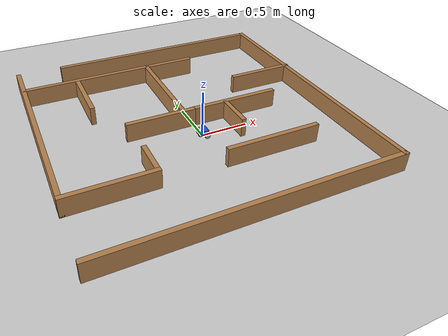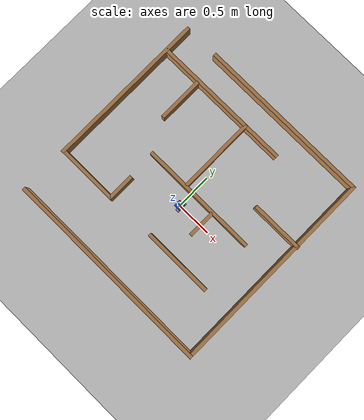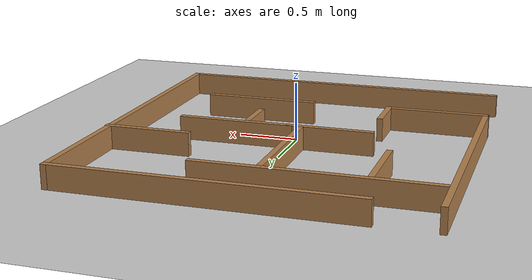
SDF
<sdf version="1.7">
 <world name="default">
  <light name="sun" type="directional">
   <pose>0 0 10 0 -0 0</pose>
   <diffuse>0.8 0.8 0.8 1</diffuse>
   <specular>0.2 0.2 0.2 1</specular>
   <attenuation>
    <range>1000</range>
    <constant>0.9</constant>
    <linear>0.01</linear>
    <quadratic>0.001</quadratic>
   </attenuation>
   <direction>-0.5 0.1 -0.9</direction>
   <spot><inner_angle>0</inner_angle><outer_angle>0</outer_angle><falloff>0</falloff></spot>
  </light>
  <model name="ground_plane">
   <static>1</static>
   <link name="link">
    <collision name="collision">
     <geometry><plane><normal>0 0 1</normal><size>100 100</size></plane></geometry>
     <surface><friction><ode><mu>100</mu><mu2>50</mu2></ode></friction></surface>
    </collision>
    <visual name="visual">
     <cast_shadows>0</cast_shadows>
     <geometry><plane><normal>0 0 1</normal><size>100 100</size></plane></geometry>
     <material>
      <script><uri>file://media/materials/scripts/gazebo.material</uri><name>Gazebo/Grey</name></script>
     </material>
    </visual>
   </link>
  </model>
  <gravity>0 0 -9.8</gravity>
  <magnetic_field>6e-06 2.3e-05 -4.2e-05</magnetic_field>
  <atmosphere type="adiabatic"/>
  <physics type="ode">
   <max_step_size>0.001</max_step_size>
   <real_time_factor>1</real_time_factor>
   <real_time_update_rate>1000</real_time_update_rate>
  </physics>
  <scene><ambient>0.4 0.4 0.4 1</ambient><background>0.7 0.7 0.7 1</background><shadows>1</shadows></scene>
  <audio><device>default</device></audio>
  <spherical_coordinates>
   <surface_model>EARTH_WGS84</surface_model>
   <latitude_deg>0</latitude_deg>
   <longitude_deg>0</longitude_deg>
   <elevation>0</elevation>
   <heading_deg>0</heading_deg>
  </spherical_coordinates>
  <model name="_robot">
   <link name="base_footprint">
    <inertial>
     <pose>0.004444 0 0.042767 0 -0 0</pose>
     <mass>7.5</mass>
     <inertia>
      <ixx>0.032018</ixx>
      <ixy>0</ixy>
      <ixz>0.000300556</ixz>
      <iyy>0.0394043</iyy>
      <iyz>-3.64333e-19</iyz>
      <izz>0.0323237</izz>
     </inertia>
    </inertial>
    <collision name="base_footprint_fixed_joint_lump__base_link_collision">
     <pose>0 0 0.052 0 -0 0</pose>
     <geometry><box><size>0.1 0.1 0.05</size></box></geometry>
    </collision>
    <collision name="base_footprint_fixed_joint_lump__LedLeft_frame_collision_1">
     <pose>0.05 0.03 0.057 3.14159 1.57079 3.14159</pose>
     <geometry><cylinder><length>0.005</length><radius>0.01</radius></cylinder></geometry>
    </collision>
    <collision name="base_footprint_fixed_joint_lump__LedRight_frame_collision_2">
     <pose>0.05 -0.03 0.057 3.14159 1.57079 3.14159</pose>
     <geometry><cylinder><length>0.005</length><radius>0.01</radius></cylinder></geometry>
    </collision>
    <collision name="base_footprint_fixed_joint_lump__caster_wheel_link_collision_3">
     <pose>-0.033333 0 0.0135 0 -0 0</pose>
     <geometry><sphere><radius>0.0135</radius></sphere></geometry>
     <surface><friction><ode><mu>0.1</mu><mu2>0.1</mu2></ode></friction></surface>
    </collision>
    <collision name="base_footprint_fixed_joint_lump__left_wheel_link_collision_4">
     <pose>0.025 -0.0625 0.027 1.5708 -0 0</pose>
     <geometry><cylinder><length>0.025</length><radius>0.027</radius></cylinder></geometry>
    </collision>
    <collision name="base_footprint_fixed_joint_lump__right_wheel_link_collision_5">
     <pose>0.025 0.0625 0.027 1.5708 -0 0</pose>
     <geometry><cylinder><length>0.025</length><radius>0.027</radius></cylinder></geometry>
    </collision>
    <collision name="base_footprint_fixed_joint_lump__ultrasonic_frame_collision_6">
     <pose>0.05 0 0.057 0 -0 0</pose>
     <geometry><cylinder><length>0.005</length><radius>0.01</radius></cylinder></geometry>
    </collision>
    <visual name="base_footprint_fixed_joint_lump__base_link_visual">
     <pose>0 0 0.052 0 -0 0</pose>
     <geometry><box><size>0.1 0.1 0.05</size></box></geometry>
     <material>
      <script><name>Gazebo/Blue</name><uri>file://media/materials/scripts/gazebo.material</uri></script>
     </material>
    </visual>
    <visual name="base_footprint_fixed_joint_lump__LedLeft_frame_visual_1">
     <pose>0.05 0.03 0.057 3.14159 1.57079 3.14159</pose>
     <geometry><cylinder><length>0.005</length><radius>0.01</radius></cylinder></geometry>
    </visual>
    <visual name="base_footprint_fixed_joint_lump__LedRight_frame_visual_2">
     <pose>0.05 -0.03 0.057 3.14159 1.57079 3.14159</pose>
     <geometry><cylinder><length>0.005</length><radius>0.01</radius></cylinder></geometry>
    </visual>
    <visual name="base_footprint_fixed_joint_lump__caster_wheel_link_visual_3">
     <pose>-0.033333 0 0.0135 0 -0 0</pose>
     <geometry><sphere><radius>0.0135</radius></sphere></geometry>
     <material>
      <script><name>Gazebo/Grey</name><uri>file://media/materials/scripts/gazebo.material</uri></script>
     </material>
    </visual>
    <visual name="base_footprint_fixed_joint_lump__left_wheel_link_visual_4">
     <pose>0.025 -0.0625 0.027 1.5708 -0 0</pose>
     <geometry><cylinder><length>0.025</length><radius>0.027</radius></cylinder></geometry>
     <material>
      <script><name>Gazebo/Grey</name><uri>file://media/materials/scripts/gazebo.material</uri></script>
     </material>
    </visual>
    <visual name="base_footprint_fixed_joint_lump__right_wheel_link_visual_5">
     <pose>0.025 0.0625 0.027 1.5708 -0 0</pose>
     <geometry><cylinder><length>0.025</length><radius>0.027</radius></cylinder></geometry>
     <material>
      <script><name>Gazebo/Grey</name><uri>file://media/materials/scripts/gazebo.material</uri></script>
     </material>
    </visual>
    <visual name="base_footprint_fixed_joint_lump__ultrasonic_frame_visual_6">
     <pose>0.05 0 0.057 0 -0 0</pose>
     <geometry><cylinder><length>0.005</length><radius>0.01</radius></cylinder></geometry>
     <material>
      <script><name>Gazebo/Blue</name><uri>file://media/materials/scripts/gazebo.material</uri></script>
     </material>
    </visual>
    <sensor name="laser" type="ray">
     <visualize>1</visualize>
     <update_rate>10</update_rate>
     <ray>
      <scan>
       <horizontal>
        <samples>360</samples>
        <min_angle>-0.01</min_angle>
        <max_angle>0.01</max_angle>
        <resolution>1</resolution>
       </horizontal>
       <vertical><samples>1</samples><min_angle>0</min_angle><max_angle>0</max_angle></vertical>
      </scan>
      <range><min>0.05</min><max>1</max></range>
     </ray>
     <plugin name="laser_controller" filename="libgazebo_ros_ray_sensor.so">
      <ros><argument>~/out:=scan</argument></ros>
      <output_type>sensor_msgs/LaserScan</output_type>
      <frame_name>ultrasonic_frame</frame_name>
     </plugin>
     <pose>0.05 0 0.057 0 -0 0</pose>
    </sensor>
   </link>
   <static>0</static>
   <plugin name="diff_drive_controller" filename="libgazebo_ros_diff_drive.so">
    <update_rate>50</update_rate>
    <left_joint>base_left_wheel_joint</left_joint>
    <right_joint>base_right_wheel_joint</right_joint>
    <wheel_separation>0.45</wheel_separation>
    <wheel_diameter>0.2</wheel_diameter>
    <publish_odom>1</publish_odom>
    <publish_odom_tf>1</publish_odom_tf>
    <publish_wheel_tf>1</publish_wheel_tf>
    <odometry_topic>odom</odometry_topic>
    <odometry_frame>odom</odometry_frame>
    <robot_base_frame>base_footprint</robot_base_frame>
   </plugin>
   <pose>-0.000196 4e-06 0 0 -1e-06 -0.000182</pose>
  </model>
  <model name="maze">
   <pose>-0.055215 0.23347 0 0 -0 0</pose>
   <link name="Wall_18">
    <collision name="Wall_18_Collision">
     <geometry><box><size>3 0.05 0.2</size></box></geometry>
     <pose>0 0 0.1 0 -0 0</pose>
    </collision>
    <visual name="Wall_18_Visual">
     <pose>0 0 0.1 0 -0 0</pose>
     <geometry><box><size>3 0.05 0.2</size></box></geometry>
     <material>
      <script><uri>file://media/materials/scripts/gazebo.material</uri><name>Gazebo/Wood</name></script>
      <ambient>1 1 1 1</ambient>
     </material>
     <meta><layer>0</layer></meta>
    </visual>
    <pose>-0.002 -1.475 0 0 -0 3.14159</pose>
   </link>
   <link name="Wall_20">
    <collision name="Wall_20_Collision">
     <geometry><box><size>3 0.05 0.2</size></box></geometry>
     <pose>0 0 0.1 0 -0 0</pose>
    </collision>
    <visual name="Wall_20_Visual">
     <pose>0 0 0.1 0 -0 0</pose>
     <geometry><box><size>3 0.05 0.2</size></box></geometry>
     <material>
      <script><uri>file://media/materials/scripts/gazebo.material</uri><name>Gazebo/Wood</name></script>
      <ambient>1 1 1 1</ambient>
     </material>
     <meta><layer>0</layer></meta>
    </visual>
    <pose>1.473 0 0 0 -0 1.5708</pose>
   </link>
   <link name="Wall_22">
    <collision name="Wall_22_Collision">
     <geometry><box><size>2.5 0.05 0.2</size></box></geometry>
     <pose>0 0 0.1 0 -0 0</pose>
    </collision>
    <visual name="Wall_22_Visual">
     <pose>0 0 0.1 0 -0 0</pose>
     <geometry><box><size>2.5 0.05 0.2</size></box></geometry>
     <material>
      <script><uri>file://media/materials/scripts/gazebo.material</uri><name>Gazebo/Wood</name></script>
      <ambient>1 1 1 1</ambient>
     </material>
     <meta><layer>0</layer></meta>
    </visual>
    <pose>0.248 1.475 0 0 -0 3.14159</pose>
   </link>
   <link name="Wall_26">
    <collision name="Wall_26_Collision">
     <geometry><box><size>1 0.05 0.2</size></box></geometry>
     <pose>0 0 0.1 0 -0 0</pose>
    </collision>
    <visual name="Wall_26_Visual">
     <pose>0 0 0.1 0 -0 0</pose>
     <geometry><box><size>1 0.05 0.2</size></box></geometry>
     <material>
      <script><uri>file://media/materials/scripts/gazebo.material</uri><name>Gazebo/Wood</name></script>
      <ambient>1 0.764706 0.305882 1</ambient>
     </material>
     <meta><layer>0</layer></meta>
    </visual>
    <pose>0.54649 -0.76451 0 0 -0 0</pose>
   </link>
   <link name="Wall_32">
    <collision name="Wall_32_Collision">
     <geometry><box><size>1 0.05 0.2</size></box></geometry>
     <pose>0 0 0.1 0 -0 0</pose>
    </collision>
    <visual name="Wall_32_Visual">
     <pose>0 0 0.1 0 -0 0</pose>
     <geometry><box><size>1 0.05 0.2</size></box></geometry>
     <material>
      <script><uri>file://media/materials/scripts/gazebo.material</uri><name>Gazebo/Wood</name></script>
      <ambient>1 0.764706 0.305882 1</ambient>
     </material>
     <meta><layer>0</layer></meta>
    </visual>
    <pose>0.519677 -0.008342 0 0 -0 0</pose>
   </link>
   <link name="Wall_40">
    <collision name="Wall_40_Collision">
     <geometry><box><size>2.3 0.05 0.2</size></box></geometry>
     <pose>0 0 0.1 0 -0 0</pose>
    </collision>
    <visual name="Wall_40_Visual">
     <pose>0 0 0.1 0 -0 0</pose>
     <geometry><box><size>2.3 0.05 0.2</size></box></geometry>
     <material>
      <script><uri>file://media/materials/scripts/gazebo.material</uri><name>Gazebo/Wood</name></script>
      <ambient>1 1 1 1</ambient>
     </material>
     <meta><layer>0</layer></meta>
    </visual>
    <pose>-1.484 0.342 0 0 -0 1.5708</pose>
   </link>
   <link name="Wall_42">
    <collision name="Wall_42_Collision">
     <geometry><box><size>0.9 0.05 0.2</size></box></geometry>
     <pose>0 0 0.1 0 -0 0</pose>
    </collision>
    <visual name="Wall_42_Visual">
     <pose>0 0 0.1 0 -0 0</pose>
     <geometry><box><size>0.9 0.05 0.2</size></box></geometry>
     <material>
      <script><uri>file://media/materials/scripts/gazebo.material</uri><name>Gazebo/Wood</name></script>
      <ambient>1 1 1 1</ambient>
     </material>
     <meta><layer>0</layer></meta>
    </visual>
    <pose>-1.059 -0.783 0 0 -0 0</pose>
   </link>
   <link name="Wall_50">
    <collision name="Wall_50_Collision">
     <geometry><box><size>0.4 0.05 0.2</size></box></geometry>
     <pose>0 0 0.1 0 -0 0</pose>
    </collision>
    <visual name="Wall_50_Visual">
     <pose>0 0 0.1 0 -0 0</pose>
     <geometry><box><size>0.4 0.05 0.2</size></box></geometry>
     <material>
      <script><uri>file://media/materials/scripts/gazebo.material</uri><name>Gazebo/Wood</name></script>
      <ambient>1 1 1 1</ambient>
     </material>
     <meta><layer>0</layer></meta>
    </visual>
    <pose>-0.634 -0.608 0 0 -0 1.5708</pose>
   </link>
   <link name="Wall_57">
    <collision name="Wall_57_Collision">
     <geometry><box><size>0.745798 0.05 0.2</size></box></geometry>
     <pose>0 0 0.1 0 -0 0</pose>
    </collision>
    <visual name="Wall_57_Visual">
     <pose>0 0 0.1 0 -0 0</pose>
     <geometry><box><size>0.745798 0.05 0.2</size></box></geometry>
     <material>
      <script><uri>file://media/materials/scripts/gazebo.material</uri><name>Gazebo/Wood</name></script>
      <ambient>1 1 1 1</ambient>
     </material>
     <meta><layer>0</layer></meta>
    </visual>
    <pose>-0.303162 -0.009423 0 0 -0 3.13849</pose>
   </link>
   <link name="Wall_59">
    <collision name="Wall_59_Collision">
     <geometry><box><size>0.65 0.05 0.2</size></box></geometry>
     <pose>0 0 0.1 0 -0 0</pose>
    </collision>
    <visual name="Wall_59_Visual">
     <pose>0 0 0.1 0 -0 0</pose>
     <geometry><box><size>0.65 0.05 0.2</size></box></geometry>
     <material>
      <script><uri>file://media/materials/scripts/gazebo.material</uri><name>Gazebo/Wood</name></script>
      <ambient>1 1 1 1</ambient>
     </material>
     <meta><layer>0</layer></meta>
    </visual>
    <pose>-0.894 0.741 0 0 -0 -1.5708</pose>
   </link>
   <link name="Wall_61">
    <collision name="Wall_61_Collision">
     <geometry><box><size>0.75 0.05 0.2</size></box></geometry>
     <pose>0 0 0.1 0 -0 0</pose>
    </collision>
    <visual name="Wall_61_Visual">
     <pose>0 0 0.1 0 -0 0</pose>
     <geometry><box><size>0.75 0.05 0.2</size></box></geometry>
     <material>
      <script><uri>file://media/materials/scripts/gazebo.material</uri><name>Gazebo/Wood</name></script>
      <ambient>1 1 1 1</ambient>
     </material>
     <meta><layer>0</layer></meta>
    </visual>
    <pose>1.134 0.433 0 0 -0 0</pose>
   </link>
   <link name="Wall_63">
    <collision name="Wall_63_Collision">
     <geometry><box><size>2 0.05 0.2</size></box></geometry>
     <pose>0 0 0.1 0 -0 0</pose>
    </collision>
    <visual name="Wall_63_Visual">
     <pose>0 0 0.1 0 -0 0</pose>
     <geometry><box><size>2 0.05 0.2</size></box></geometry>
     <material>
      <script><uri>file://media/materials/scripts/gazebo.material</uri><name>Gazebo/Wood</name></script>
      <ambient>1 1 1 1</ambient>
     </material>
     <meta><layer>0</layer></meta>
    </visual>
    <pose>-0.491 1.08 0 0 -0 0</pose>
   </link>
   <link name="Wall_65">
    <collision name="Wall_65_Collision">
     <geometry><box><size>1.1 0.05 0.2</size></box></geometry>
     <pose>0 0 0.1 0 -0 0</pose>
    </collision>
    <visual name="Wall_65_Visual">
     <pose>0 0 0.1 0 -0 0</pose>
     <geometry><box><size>1.1 0.05 0.2</size></box></geometry>
     <material>
      <script><uri>file://media/materials/scripts/gazebo.material</uri><name>Gazebo/Wood</name></script>
      <ambient>1 1 1 1</ambient>
     </material>
     <meta><layer>0</layer></meta>
    </visual>
    <pose>-0.057 0.551 0 0 -0 -1.5708</pose>
   </link>
   <link name="Wall_67">
    <collision name="Wall_67_Collision">
     <geometry><box><size>0.35 0 0.2</size></box></geometry>
     <pose>0 0 0.1 0 -0 0</pose>
    </collision>
    <visual name="Wall_67_Visual">
     <pose>0 0 0.1 0 -0 0</pose>
     <geometry><box><size>0.35 0 0.2</size></box></geometry>
     <material>
      <script><uri>file://media/materials/scripts/gazebo.material</uri><name>Gazebo/Wood</name></script>
      <ambient>1 1 1 1</ambient>
     </material>
     <meta><layer>0</layer></meta>
    </visual>
    <pose>0.425677 -0.211899 0 0 -0 -1.5708</pose>
   </link>
   <link name="Wall_69">
    <collision name="Wall_69_Collision">
     <geometry><box><size>0.4 0.05 0.2</size></box></geometry>
     <pose>0 0 0.1 0 -0 0</pose>
    </collision>
    <visual name="Wall_69_Visual">
     <pose>0 0 0.1 0 -0 0</pose>
     <geometry><box><size>0.4 0.05 0.2</size></box></geometry>
     <material>
      <script><uri>file://media/materials/scripts/gazebo.material</uri><name>Gazebo/Wood</name></script>
      <ambient>1 1 1 1</ambient>
     </material>
     <meta><layer>0</layer></meta>
    </visual>
    <pose>0.425677 -0.209737 0 0 -0 -1.5708</pose>
   </link>
   <static>1</static>
  </model>
 </world>
</sdf>
